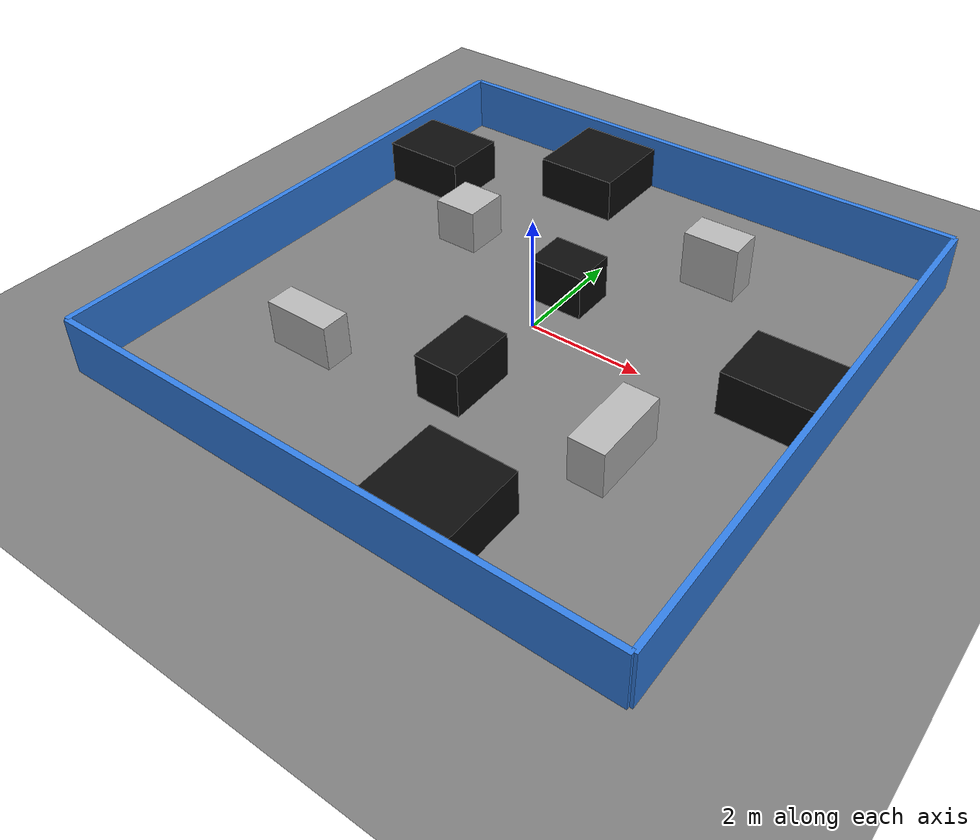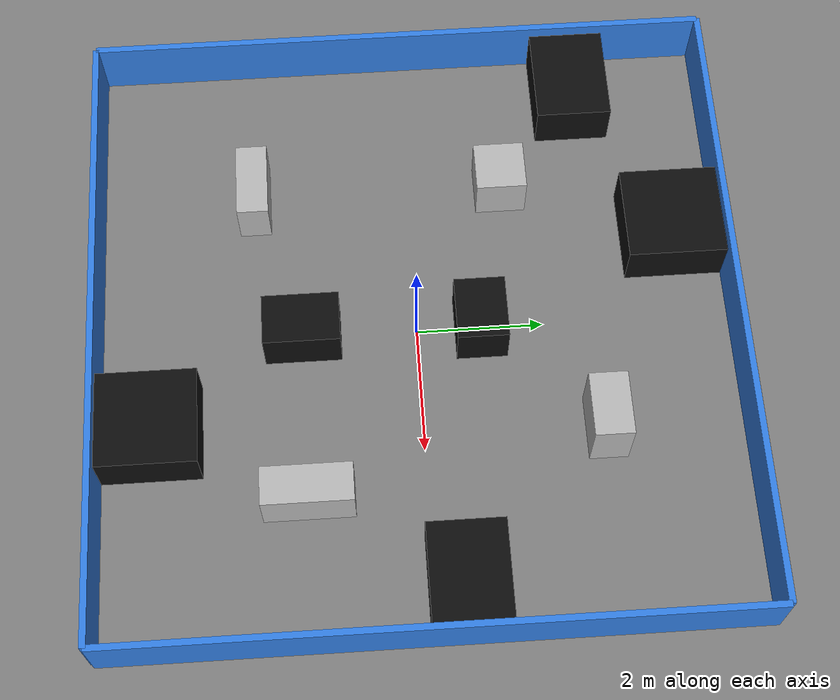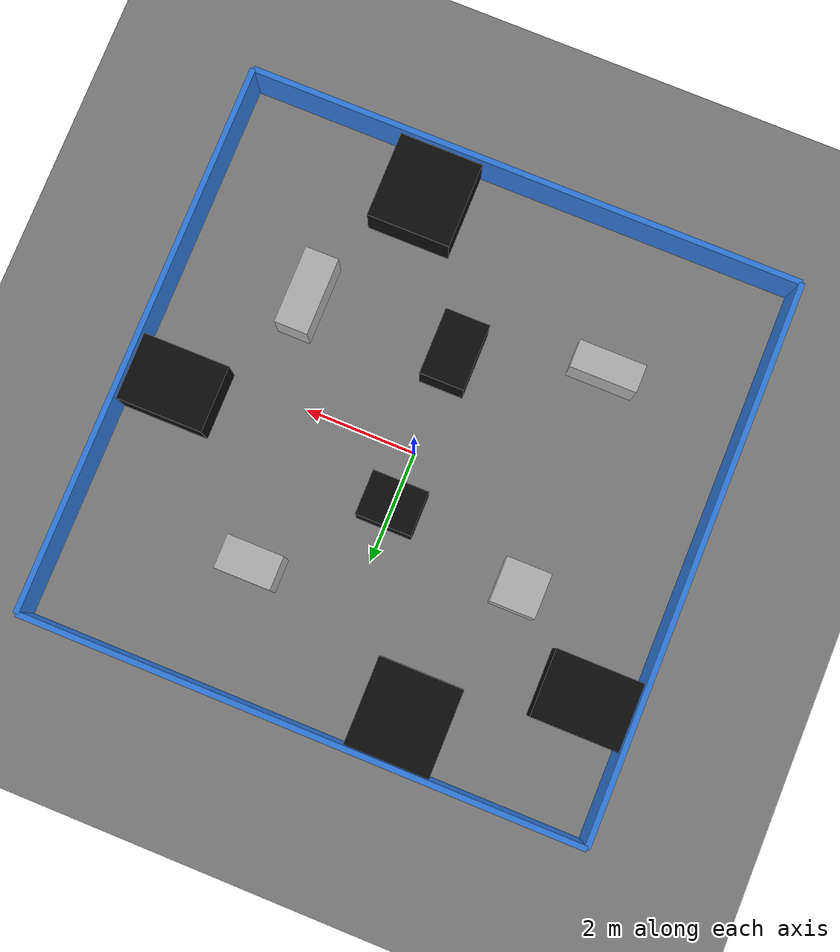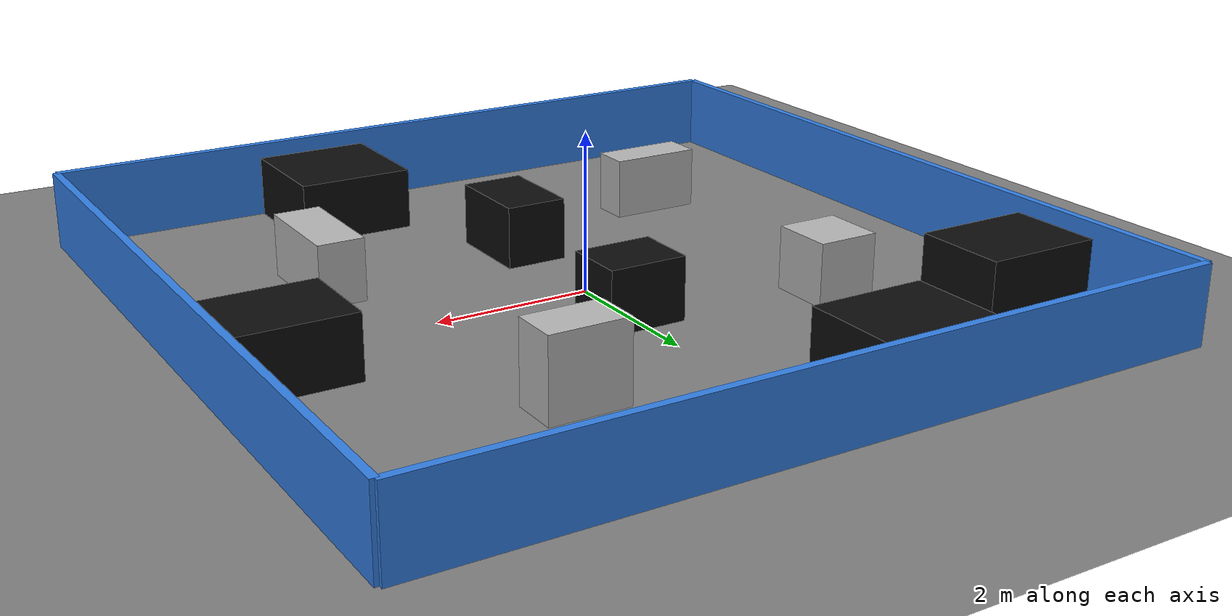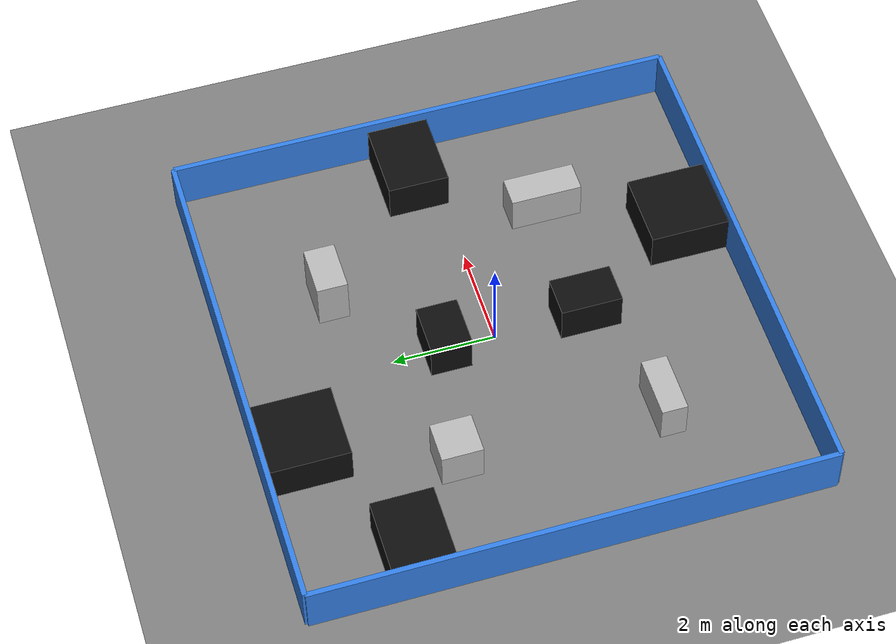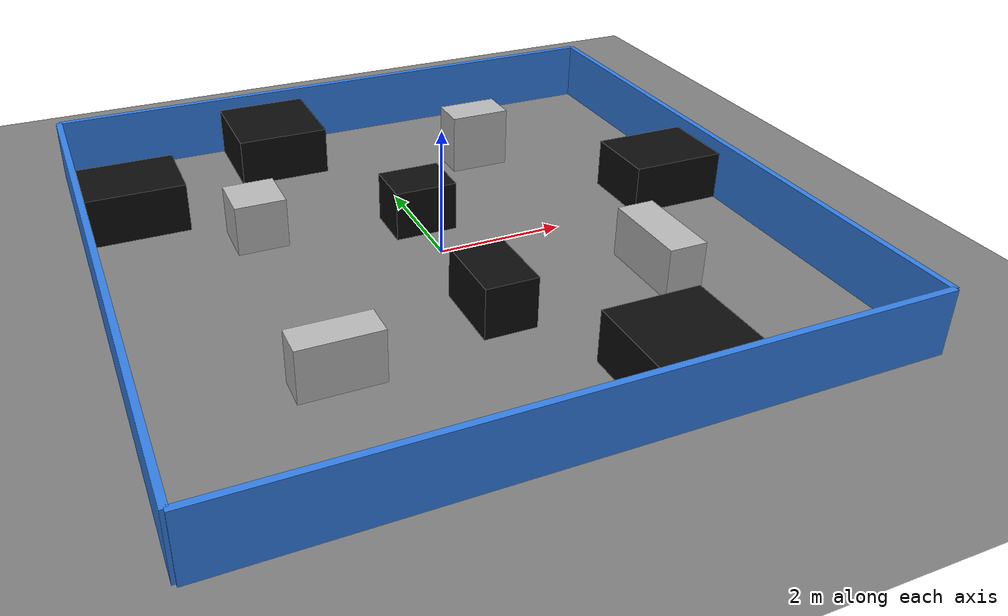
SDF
<?xml version="1.0" ?>
<sdf version="1.9">
  <world name="room">

    <physics name="default_physics" type="ode">
      <max_step_size>0.001</max_step_size>
      <real_time_factor>1</real_time_factor>
      <real_time_update_rate>1000</real_time_update_rate>
    </physics>

    <plugin
      filename="gz-sim-physics-system"
      name="gz::sim::systems::Physics"/>

    <plugin
      filename="gz-sim-user-commands-system"
      name="gz::sim::systems::UserCommands"/>

    <plugin
      filename="gz-sim-scene-broadcaster-system"
      name="gz::sim::systems::SceneBroadcaster"/>

    <plugin
      filename="gz-sim-sensors-system"
      name="gz::sim::systems::Sensors">
      <render_engine>ogre2</render_engine>
    </plugin>

    <!-- Ground -->

    <model name="ground">
      <static>true</static>

      <link name="link">

        <collision name="collision">
          <geometry>
            <plane>
              <normal>0 0 1</normal>
              <size>20 20</size>
            </plane>
          </geometry>
        </collision>

        <visual name="visual">
          <geometry>
            <plane>
              <normal>0 0 1</normal>
              <size>20 20</size>
            </plane>
          </geometry>

          <material>
            <ambient>0.5 0.5 0.5 1</ambient>
            <diffuse>0.5 0.5 0.5 1</diffuse>
          </material>
        </visual>

      </link>
    </model>

    <!-- Back wall -->

    <model name="back_wall">
      <static>true</static>
      <pose>0 5 0.5 0 0 0</pose>

      <link name="link">

        <collision name="collision">
          <geometry>
            <box>
              <size>10 0.1 1</size>
            </box>
          </geometry>
        </collision>

        <visual name="visual">
          <geometry>
            <box>
              <size>10 0.1 1</size>
            </box>
          </geometry>

          <material>
            <ambient>0.2 0.5 0.9 1</ambient>
            <diffuse>0.2 0.5 0.9 1</diffuse>
          </material>
        </visual>

      </link>
    </model>

    <!-- Front wall -->

    <model name="front_wall">
      <static>true</static>
      <pose>0 -5 0.5 0 0 0</pose>

      <link name="link">

        <collision name="collision">
          <geometry>
            <box>
              <size>10 0.1 1</size>
            </box>
          </geometry>
        </collision>

        <visual name="visual">
          <geometry>
            <box>
              <size>10 0.1 1</size>
            </box>
          </geometry>

          <material>
            <ambient>0.2 0.5 0.9 1</ambient>
            <diffuse>0.2 0.5 0.9 1</diffuse>
          </material>
        </visual>

      </link>
    </model>

    <!-- Left wall -->

    <model name="left_wall">
      <static>true</static>
      <pose>-5 0 0.5 0 0 0</pose>

      <link name="link">

        <collision name="collision">
          <geometry>
            <box>
              <size>0.1 10 1</size>
            </box>
          </geometry>
        </collision>

        <visual name="visual">
          <geometry>
            <box>
              <size>0.1 10 1</size>
            </box>
          </geometry>

          <material>
            <ambient>0.2 0.5 0.9 1</ambient>
            <diffuse>0.2 0.5 0.9 1</diffuse>
          </material>
        </visual>

      </link>
    </model>

    <!-- Right wall -->

    <model name="right_wall">
      <static>true</static>
      <pose>5 0 0.5 0 0 0</pose>

      <link name="link">

        <collision name="collision">
          <geometry>
            <box>
              <size>0.1 10 1</size>
            </box>
          </geometry>
        </collision>

        <visual name="visual">
          <geometry>
            <box>
              <size>0.1 10 1</size>
            </box>
          </geometry>

          <material>
            <ambient>0.2 0.5 0.9 1</ambient>
            <diffuse>0.2 0.5 0.9 1</diffuse>
          </material>
        </visual>

      </link>
    </model>

    <model name="landmark_1">
      <static>true</static>
      <pose>-2.5 1.5 0.4 0 0 0</pose>
      <link name="link">
        <collision name="collision">
          <geometry><box><size>0.8 0.8 0.8</size></box></geometry>
        </collision>
        <visual name="visual">
          <geometry><box><size>0.8 0.8 0.8</size></box></geometry>
        </visual>
      </link>
    </model>

    <model name="landmark_2">
      <static>true</static>
      <pose>1.8 2.8 0.5 0 0 0</pose>
      <link name="link">
        <collision name="collision">
          <geometry><box><size>1.0 0.6 1.0</size></box></geometry>
        </collision>
        <visual name="visual">
          <geometry><box><size>1.0 0.6 1.0</size></box></geometry>
        </visual>
      </link>
    </model>

    <model name="landmark_3">
      <static>true</static>
      <pose>2.7 -1.8 0.4 0 0 0</pose>
      <link name="link">
        <collision name="collision">
          <geometry><box><size>0.6 1.4 0.8</size></box></geometry>
        </collision>
        <visual name="visual">
          <geometry><box><size>0.6 1.4 0.8</size></box></geometry>
        </visual>
      </link>
    </model>

    <model name="landmark_4">
      <static>true</static>
      <pose>-2.5 -2.5 0.4 0 0 0</pose>
      <link name="link">
        <collision name="collision">
          <geometry><box><size>1.2 0.5 0.8</size></box></geometry>
        </collision>
        <visual name="visual">
          <geometry><box><size>1.2 0.5 0.8</size></box></geometry>
        </visual>
      </link>
    </model>

        <!-- WALL-CONNECTED OBSTACLE 1: LEFT WALL -->
    <model name="maze_wall_left">
      <static>true</static>
      <pose>-4.2 2.8 0.4 0 0 0</pose>
      <link name="link">
        <collision name="collision">
          <geometry>
            <box>
              <size>1.6 1.2 0.8</size>
            </box>
          </geometry>
        </collision>
        <visual name="visual">
          <geometry>
            <box>
              <size>1.6 1.2 0.8</size>
            </box>
          </geometry>
          <material>
            <ambient>0.05 0.05 0.05 1</ambient>
            <diffuse>0.05 0.05 0.05 1</diffuse>
          </material>
        </visual>
      </link>
    </model>

    <!-- WALL-CONNECTED OBSTACLE 2: RIGHT WALL -->
    <model name="maze_wall_right">
      <static>true</static>
      <pose>4.2 0.5 0.4 0 0 0</pose>
      <link name="link">
        <collision name="collision">
          <geometry>
            <box>
              <size>1.6 1.2 0.8</size>
            </box>
          </geometry>
        </collision>
        <visual name="visual">
          <geometry>
            <box>
              <size>1.6 1.2 0.8</size>
            </box>
          </geometry>
          <material>
            <ambient>0.05 0.05 0.05 1</ambient>
            <diffuse>0.05 0.05 0.05 1</diffuse>
          </material>
        </visual>
      </link>
    </model>

    <!-- WALL-CONNECTED OBSTACLE 3: BACK WALL -->
    <model name="maze_wall_back">
      <static>true</static>
      <pose>-1.5 4.2 0.4 0 0 0</pose>
      <link name="link">
        <collision name="collision">
          <geometry>
            <box>
              <size>1.5 1.6 0.8</size>
            </box>
          </geometry>
        </collision>
        <visual name="visual">
          <geometry>
            <box>
              <size>1.5 1.6 0.8</size>
            </box>
          </geometry>
          <material>
            <ambient>0.05 0.05 0.05 1</ambient>
            <diffuse>0.05 0.05 0.05 1</diffuse>
          </material>
        </visual>
      </link>
    </model>

    <!-- WALL-CONNECTED OBSTACLE 4: FRONT WALL -->
    <model name="maze_wall_front">
      <static>true</static>
      <pose>1.5 -4.2 0.4 0 0 0</pose>
      <link name="link">
        <collision name="collision">
          <geometry>
            <box>
              <size>1.5 1.6 0.8</size>
            </box>
          </geometry>
        </collision>
        <visual name="visual">
          <geometry>
            <box>
              <size>1.5 1.6 0.8</size>
            </box>
          </geometry>
          <material>
            <ambient>0.05 0.05 0.05 1</ambient>
            <diffuse>0.05 0.05 0.05 1</diffuse>
          </material>
        </visual>
      </link>
    </model>

    <!-- CENTRAL OBSTACLE 1 -->
    <model name="maze_center_1">
      <static>true</static>
      <pose>0.0 1.0 0.4 0 0 0</pose>
      <link name="link">
        <collision name="collision">
          <geometry>
            <box>
              <size>1.0 0.8 0.8</size>
            </box>
          </geometry>
        </collision>
        <visual name="visual">
          <geometry>
            <box>
              <size>1.0 0.8 0.8</size>
            </box>
          </geometry>
          <material>
            <ambient>0.05 0.05 0.05 1</ambient>
            <diffuse>0.05 0.05 0.05 1</diffuse>
          </material>
        </visual>
      </link>
    </model>

    <!-- CENTRAL OBSTACLE 2 -->
    <model name="maze_center_2">
      <static>true</static>
      <pose>0.0 -1.8 0.4 0 0 0</pose>
      <link name="link">
        <collision name="collision">
          <geometry>
            <box>
              <size>0.8 1.2 0.8</size>
            </box>
          </geometry>
        </collision>
        <visual name="visual">
          <geometry>
            <box>
              <size>0.8 1.2 0.8</size>
            </box>
          </geometry>
          <material>
            <ambient>0.05 0.05 0.05 1</ambient>
            <diffuse>0.05 0.05 0.05 1</diffuse>
          </material>
        </visual>
      </link>
    </model>

  </world>
</sdf>
